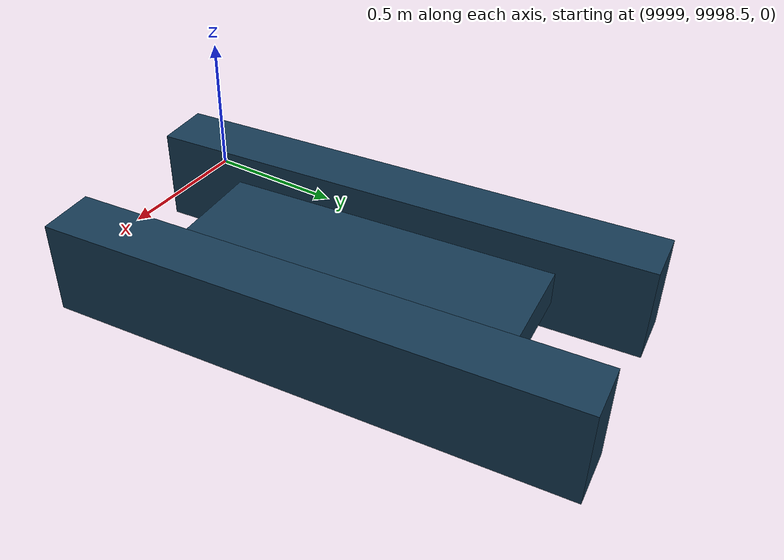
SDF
<?xml version="1.0"?>
<sdf version="1.10"><world name="surveyor_vrx"><physics name="vrx_physics" type="dart"><max_step_size>0.05</max_step_size><real_time_factor>1</real_time_factor></physics><gravity>0 0 -9.81</gravity><include><uri>model://surveyor</uri><pose>9999.385756005067 9999.385874245316 0.05 0 0 1.6778523430041923</pose></include><plugin filename="gz-sim-physics-system" name="gz::sim::systems::Physics"/><plugin filename="gz-sim-user-commands-system" name="gz::sim::systems::UserCommands"/><plugin filename="gz-sim-scene-broadcaster-system" name="gz::sim::systems::SceneBroadcaster"/><plugin filename="gz-sim-sensors-system" name="gz::sim::systems::Sensors"/><plugin filename="gz-sim-imu-system" name="gz::sim::systems::Imu"/><plugin filename="gz-sim-navsat-system" name="gz::sim::systems::NavSat"/><plugin filename="libUSVWind.so" name="vrx::USVWind"><wind_obj><name>surveyor</name><link_name>surveyor::base_link</link_name><coeff_vector>0.25754575 0.51783225 0</coeff_vector></wind_obj><wind_direction>20.45200902968645</wind_direction><wind_mean_velocity>1.5459838788956404</wind_mean_velocity><var_wind_gain_constants>0</var_wind_gain_constants><var_wind_time_constants>2</var_wind_time_constants><random_seed>20009</random_seed><update_rate>10</update_rate><topic_wind_speed>/vrx/debug/wind/speed</topic_wind_speed><topic_wind_direction>/vrx/debug/wind/direction</topic_wind_direction></plugin></world></sdf>

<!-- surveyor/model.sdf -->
<sdf version="1.10">
  <model name="surveyor">
    <link name="base_link">
      <inertial><pose>0.007543520309477757 0 0 0 0 0</pose><mass>51.699999999999996</mass><inertia><ixx>5.309042500000001</ixx><iyy>13.090471693745972</iyy><izz>17.569042860412644</izz><ixy>0</ixy><ixz>0</ixz><iyz>0</iyz></inertia><fluid_added_mass><xx>2.615</xx><yy>39.224999999999994</yy><rr>1.431297586666667</rr></fluid_added_mass></inertial>
      <collision name="port_pontoon_collision"><pose>0 -0.33 0 0 0 0</pose><geometry><box><size>1.83 0.2 0.34</size></box></geometry><surface><contact><collide_bitmask>65535</collide_bitmask></contact></surface></collision>
      <visual name="port_pontoon_visual"><pose>0 -0.33 0 0 0 0</pose><geometry><box><size>1.83 0.2 0.34</size></box></geometry><material><diffuse>0.08 0.22 0.32 1</diffuse></material></visual>
      <collision name="starboard_pontoon_collision"><pose>0 0.33 0 0 0 0</pose><geometry><box><size>1.83 0.2 0.34</size></box></geometry><surface><contact><collide_bitmask>65535</collide_bitmask></contact></surface></collision>
      <visual name="starboard_pontoon_visual"><pose>0 0.33 0 0 0 0</pose><geometry><box><size>1.83 0.2 0.34</size></box></geometry><material><diffuse>0.08 0.22 0.32 1</diffuse></material></visual>
      <collision name="deck_payload_and_superstructure_collision"><pose>0 0 0 0 0 0</pose><geometry><box><size>1.2 0.55 0.12</size></box></geometry><surface><contact><collide_bitmask>65535</collide_bitmask></contact></surface></collision>
      <visual name="deck_payload_and_superstructure_visual"><pose>0 0 0 0 0 0</pose><geometry><box><size>1.2 0.55 0.12</size></box></geometry><material><diffuse>0.08 0.22 0.32 1</diffuse></material></visual>
      <sensor name="port_hull_contact" type="contact"><always_on>true</always_on><update_rate>20</update_rate><contact><collision>port_pontoon_collision</collision><topic>/surveyor/contacts/hull_0</topic></contact></sensor>
      <sensor name="starboard_hull_contact" type="contact"><always_on>true</always_on><update_rate>20</update_rate><contact><collision>starboard_pontoon_collision</collision><topic>/surveyor/contacts/hull_1</topic></contact></sensor>
      <sensor name="task_imu" type="imu"><always_on>true</always_on><update_rate>50</update_rate><topic>imu</topic><imu><orientation_reference_frame><localization>ENU</localization></orientation_reference_frame></imu></sensor>
      <sensor name="task_gps" type="navsat"><always_on>true</always_on><update_rate>2</update_rate><topic>gps</topic></sensor>
    </link>
    <plugin filename="libSurface.so" name="vrx::Surface"><link_name>base_link</link_name><hull_length>1.83</hull_length><hull_radius>0.17</hull_radius><fluid_level>0</fluid_level><fluid_density>1025</fluid_density><points><point>0.4575 -0.33 0</point><point>-0.4575 -0.33 0</point></points><wavefield><topic>/vrx/wavefield/parameters</topic></wavefield></plugin>
    <plugin filename="libSurface.so" name="vrx::Surface"><link_name>base_link</link_name><hull_length>1.83</hull_length><hull_radius>0.17</hull_radius><fluid_level>0</fluid_level><fluid_density>1025</fluid_density><points><point>0.4575 0.33 0</point><point>-0.4575 0.33 0</point></points><wavefield><topic>/vrx/wavefield/parameters</topic></wavefield></plugin>
    <plugin filename="libSimpleHydrodynamics.so" name="vrx::SimpleHydrodynamics"><link_name>base_link</link_name><xDotU>0</xDotU><yDotV>0</yDotV><nDotR>0</nDotR><xU>6</xU><xUU>18</xUU><yV>18</yV><yVV>60</yVV><zW>365</zW><kP>40</kP><mQ>85</mQ><nR>8</nR><nRR>12</nRR></plugin>
    <link name="port_propeller"><pose relative_to="base_link">-0.65 0.33 0 0 0 0</pose><inertial><mass>0.3</mass><inertia><ixx>0.000375</ixx><iyy>0.0001975</iyy><izz>0.0001975</izz><ixy>0</ixy><ixz>0</ixz><iyz>0</iyz></inertia></inertial></link>
    <joint name="port_propeller_joint" type="revolute"><parent>base_link</parent><child>port_propeller</child><axis><xyz>1 0 0</xyz><dynamics><damping>0.010132118364233778</damping></dynamics></axis></joint>
    <plugin filename="gz-sim-thruster-system" name="gz::sim::systems::Thruster"><joint_name>port_propeller_joint</joint_name><thrust_coefficient>0.006919495468257212</thrust_coefficient><fluid_density>1025</fluid_density><propeller_diameter>0.1</propeller_diameter><velocity_control>true</velocity_control><min_thrust_cmd>-70</min_thrust_cmd><max_thrust_cmd>70</max_thrust_cmd><namespace>surveyor</namespace><topic>thrusters/port/thrust</topic></plugin>
    <link name="starboard_propeller"><pose relative_to="base_link">-0.65 -0.33 0 0 0 0</pose><inertial><mass>0.3</mass><inertia><ixx>0.000375</ixx><iyy>0.0001975</iyy><izz>0.0001975</izz><ixy>0</ixy><ixz>0</ixz><iyz>0</iyz></inertia></inertial></link>
    <joint name="starboard_propeller_joint" type="revolute"><parent>base_link</parent><child>starboard_propeller</child><axis><xyz>1 0 0</xyz><dynamics><damping>0.010132118364233778</damping></dynamics></axis></joint>
    <plugin filename="gz-sim-thruster-system" name="gz::sim::systems::Thruster"><joint_name>starboard_propeller_joint</joint_name><thrust_coefficient>0.006919495468257212</thrust_coefficient><fluid_density>1025</fluid_density><propeller_diameter>0.1</propeller_diameter><velocity_control>true</velocity_control><min_thrust_cmd>-70</min_thrust_cmd><max_thrust_cmd>70</max_thrust_cmd><namespace>surveyor</namespace><topic>thrusters/starboard/thrust</topic></plugin>
    <plugin filename="gz-sim-pose-publisher-system" name="gz::sim::systems::PosePublisher"><publish_model_pose>true</publish_model_pose><publish_link_pose>true</publish_link_pose><use_pose_vector_msg>true</use_pose_vector_msg><static_publisher>false</static_publisher></plugin>
    <plugin filename="gz-sim-odometry-publisher-system" name="gz::sim::systems::OdometryPublisher"><odom_publish_frequency>20</odom_publish_frequency><odom_topic>odometry</odom_topic><dimensions>3</dimensions></plugin>
  <plugin filename="libVrxCurrentRelativeVelocity.so" name="vrx_surveyor::CurrentRelativeVelocity"><link_name>base_link</link_name><current_enu>0.5935601372961575 0.30019442610676117 0</current_enu><mass>52.3</mass><xU>6</xU><xUU>18</xUU><yV>18</yV><yVV>60</yVV><xDotU>-2.615</xDotU><yDotV>-39.224999999999994</yDotV></plugin><plugin filename="libVrxSurveyorRelativeWind.so" name="vrx_surveyor::SurveyorRelativeWind"><link_name>base_link</link_name><wind_enu>-2.7541780507516833 -0.4226101393979674 0</wind_enu><air_density>1.225</air_density><frontal_area>0.3822</frontal_area><side_area>0.7686</side_area><drag_coefficient>1.1</drag_coefficient></plugin></model>
</sdf>
